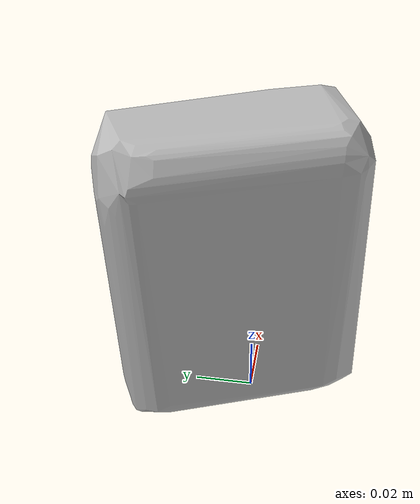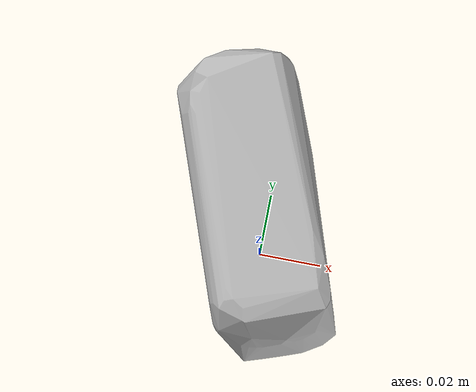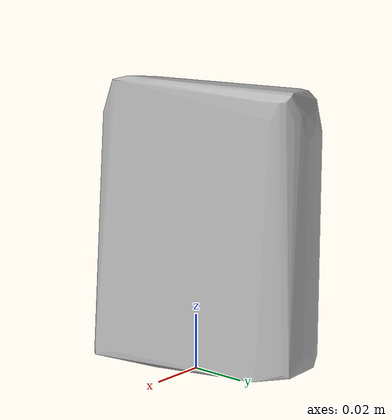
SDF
<?xml version='1.0'?>
<sdf version="1.4">
  <model name="crayola_24_crayons">
    <static>false</static>
    <link name="link">
      <inertial>
        <pose>0.0005043098821521756 0.0053629679648746756 0.0507474610331556 -3.100175213203313 0.04352722522565849 -2.829529947562849</pose>
        <mass>0.026223899752216884</mass>
        <inertia>
          <ixx>3.245053252608925e-05</ixx>
          <ixy>-1.401684634642813e-21</ixy>
          <ixz>3.0363826455587446e-22</ixz>
          <iyy>2.2869447410555802e-05</iyy>
          <iyz>1.5091249620216443e-22</iyz>
          <izz>1.5114577035099251e-05</izz>
        </inertia>
      </inertial>
      <collision name="collision">
        <geometry>
          <mesh>
            <!-- Use a downsampled mesh for collisions -->
            <uri>model:///crayola_24_crayons/crayola_24_crayons_250_collision.obj</uri>
	        </mesh>
        </geometry>
        <surface>
      </surface>
      </collision>
      <visual name="visual">
        <geometry>
          <mesh>
            <uri>model:///crayola_24_crayons/optimized_tsdf_texture_mapped_mesh.obj</uri>
	        </mesh>
        </geometry>
        <material>
          <script>
            <uri>model:///crayola_24_crayons/crayola_24_crayons.material</uri>
            <name>crayola_24_crayons</name>
          </script>
        </material>
      </visual>
    </link>
  </model>
</sdf>
